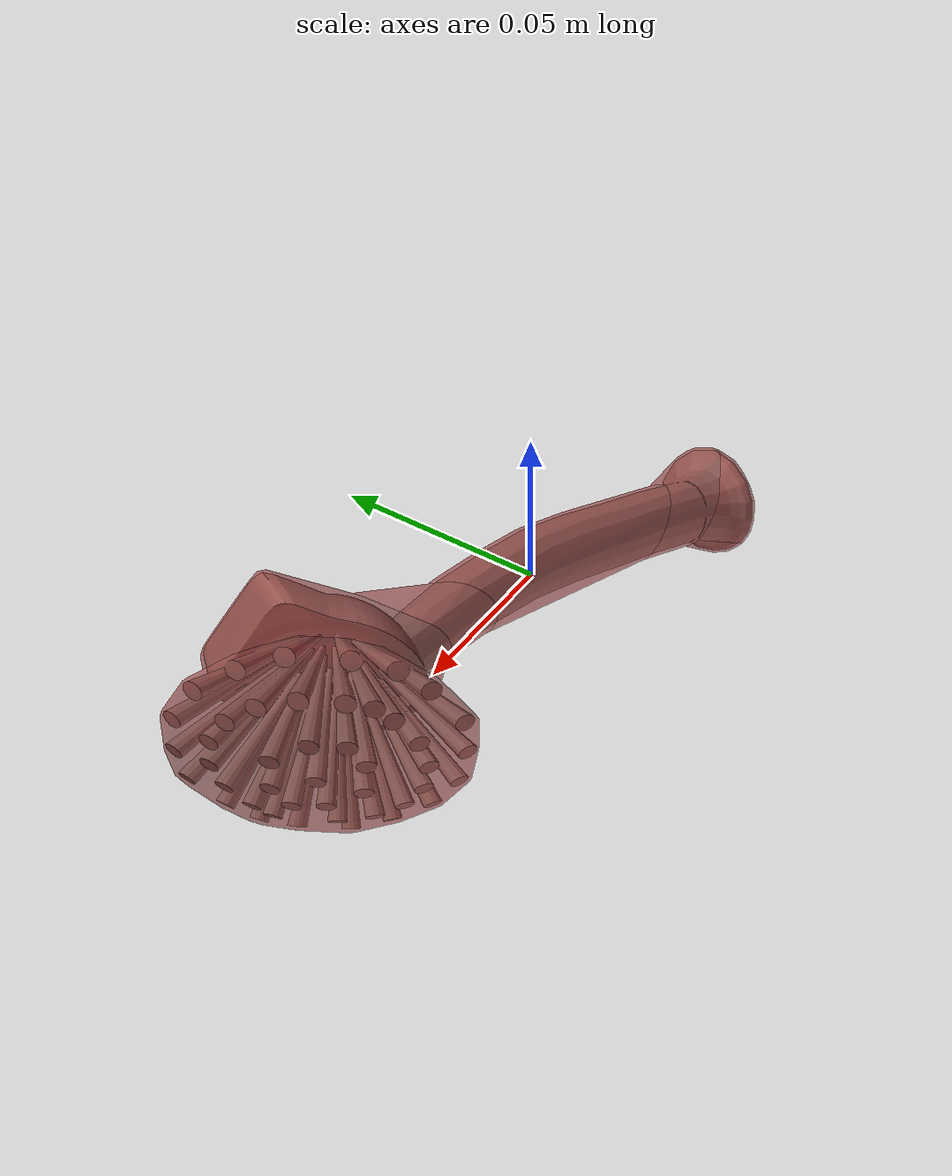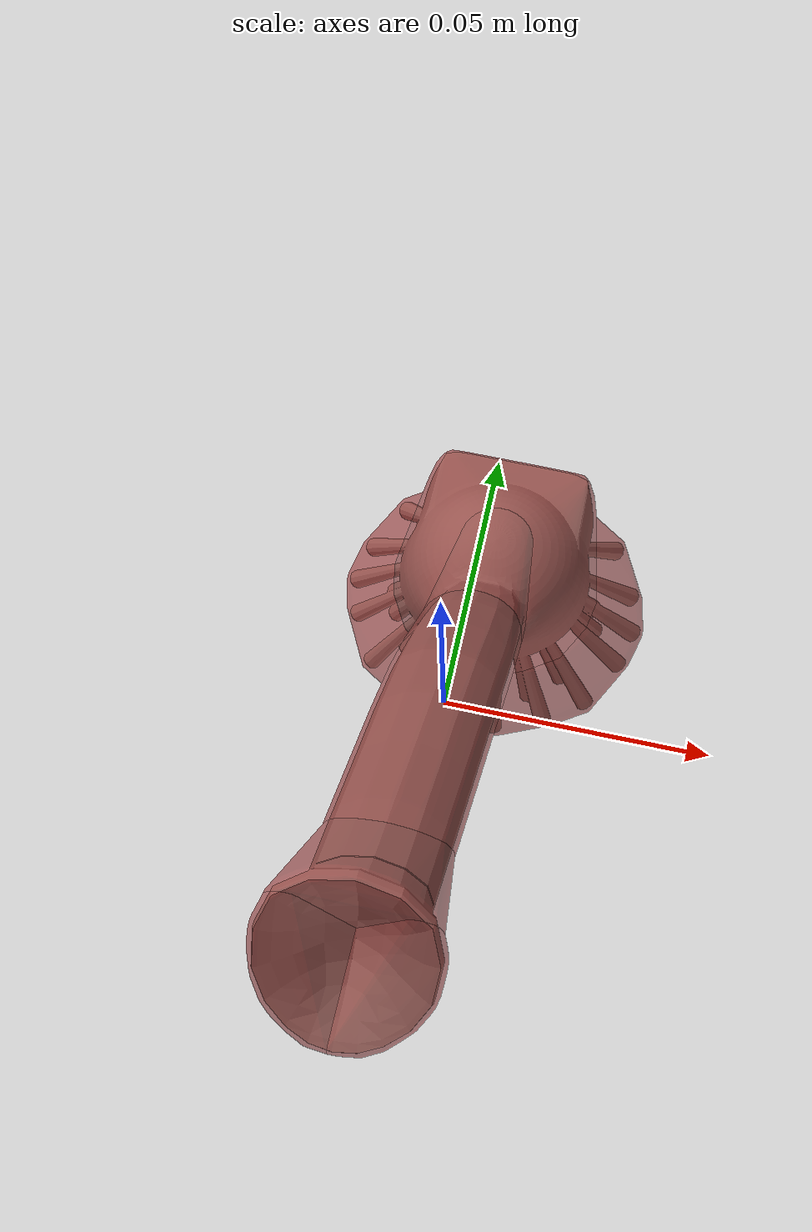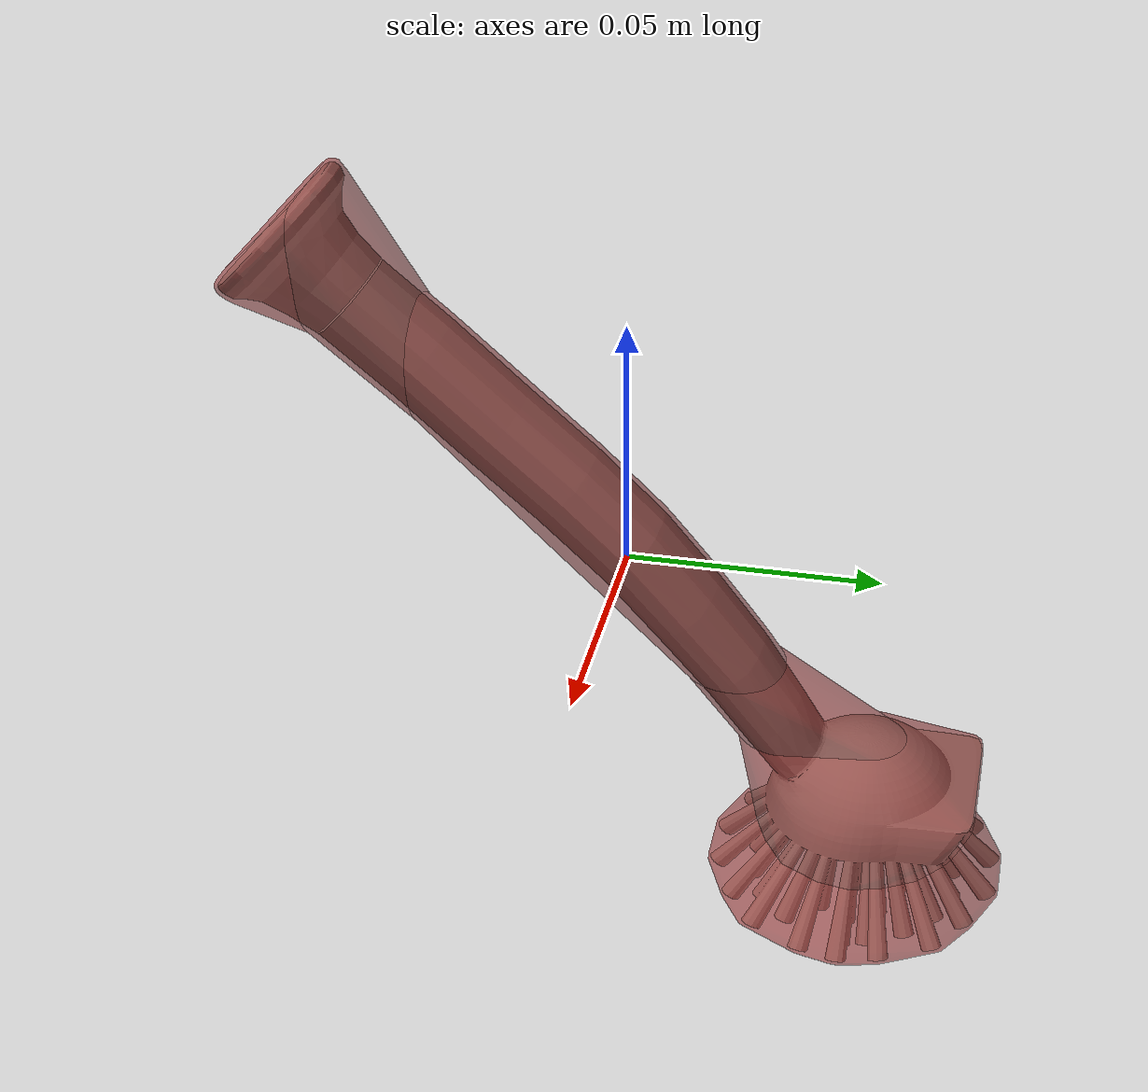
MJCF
<mujoco model="model">
  <option timestep="0.002" gravity="0.0 0.0 -9.81"/>
  <compiler angle="radian"/>
  <asset>
    <mesh file="visual/DishBrush007.obj" name="DishBrush007_vis"/>
    <texture file="visual/T_BC001.png" name="DishBrush007_material" type="2d"/>
    <material name="DishBrush007_material" rgba="1 1 1 1.0" texture="DishBrush007_material" shininess="0.1" specular="0.5"/>
    <mesh file="collision/collision_mesh_collision_0.obj" name="DishBrush007_collision_mesh_0"/>
    <mesh file="collision/collision_mesh_collision_1.obj" name="DishBrush007_collision_mesh_1"/>
    <mesh file="collision/collision_mesh_collision_2.obj" name="DishBrush007_collision_mesh_2"/>
    <mesh file="collision/collision_mesh_collision_3.obj" name="DishBrush007_collision_mesh_3"/>
    <mesh file="collision/collision_mesh_collision_4.obj" name="DishBrush007_collision_mesh_4"/>
    <mesh file="collision/collision_mesh_collision_5.obj" name="DishBrush007_collision_mesh_5"/>
    <mesh file="collision/collision_mesh_collision_6.obj" name="DishBrush007_collision_mesh_6"/>
  </asset>
  <default>
    <default class="visual">
      <geom conaffinity="0" contype="0" group="1" type="mesh"/>
    </default>
    <default class="collision">
      <geom group="0" rgba="0.5 0 0 0.5" density="1.0" solref="0.004 1" solimp="0.998 0.998 0.001"/>
    </default>
    <default class="spawn">
      <geom group="0" rgba="1 1 1 0.5" contype="0" conaffinity="0"/>
      <site group="0" rgba="1 1 1 0.5"/>
    </default>
    <default class="region">
      <geom group="1" conaffinity="0" contype="0" rgba="0 1 0 0" mass="0"/>
    </default>
  </default>
  <worldbody>
    <body>
      <body name="object">
        <geom mesh="DishBrush007_vis" type="mesh" solimp="0.998 0.998 0.001" solref="0.001 1" friction="0.95 0.3 0.1" class="visual" material="DishBrush007_material"/>
        <geom class="region" name="reg_bbox" type="box" pos="-8.940000000002418e-06 -6.0320000000002594e-05 -8.717500000000183e-05" size="0.03289311 0.07840123 0.07660183500000001"/>
        <geom mesh="DishBrush007_collision_mesh_0" type="mesh" class="collision"/>
        <geom mesh="DishBrush007_collision_mesh_1" type="mesh" class="collision"/>
        <geom mesh="DishBrush007_collision_mesh_2" type="mesh" class="collision"/>
        <geom mesh="DishBrush007_collision_mesh_3" type="mesh" class="collision"/>
        <geom mesh="DishBrush007_collision_mesh_4" type="mesh" class="collision"/>
        <geom mesh="DishBrush007_collision_mesh_5" type="mesh" class="collision"/>
        <geom mesh="DishBrush007_collision_mesh_6" type="mesh" class="collision"/>
      </body>
    </body>
  </worldbody>
  <actuator/>
</mujoco>
